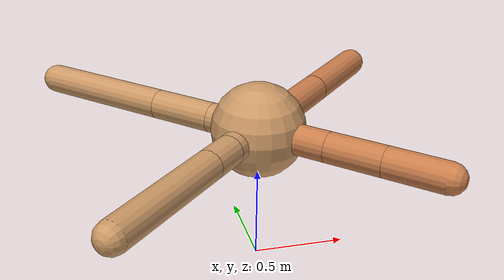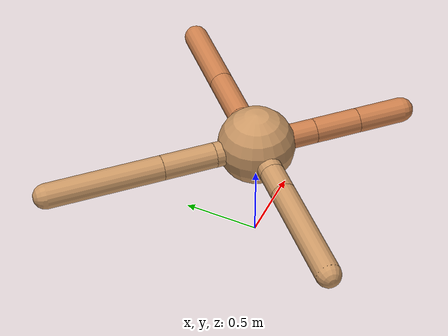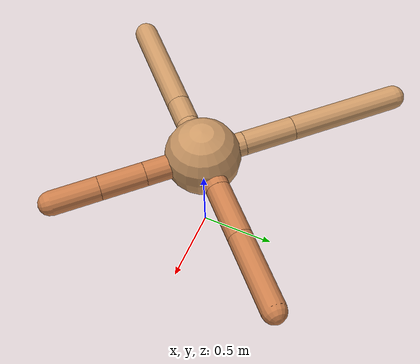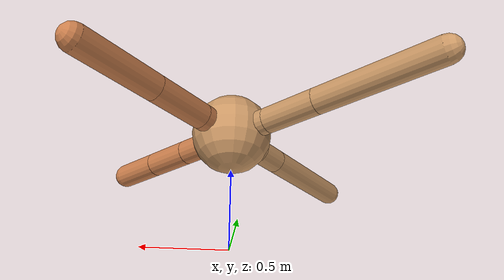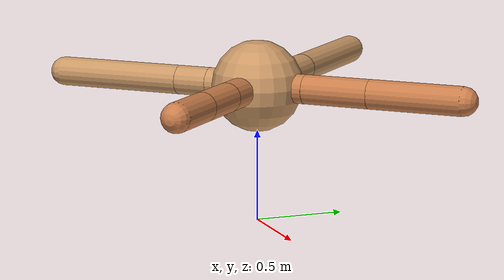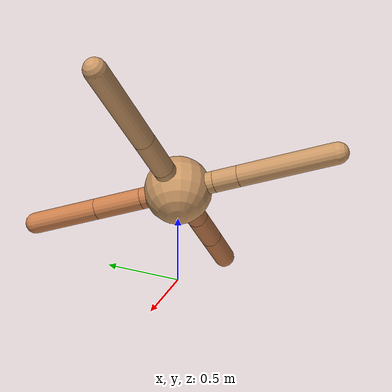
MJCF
<mujoco model="ant">
  <compiler angle="degree" coordinate="local" inertiafromgeom="true" />
  <option integrator="RK4" timestep="0.01" />
  <custom>
    <numeric data="0.0 0.0 0.55 1.0 0.0 0.0 0.0 0.0 1.0 0.0 -1.0 0.0 -1.0 0.0 1.0" name="init_qpos" />
  </custom>
  <default>
    <joint armature="1" damping="1" limited="true" />
    <geom conaffinity="0" condim="3" density="5.0" friction="1.5 0.1 0.1" margin="0.01" rgba="0.8 0.6 0.4 1" />
  </default>
  <worldbody>
    <body name="torso" pos="0 0 0.75">
      <geom name="torso_geom" pos="0 0 0" size="0.25" type="sphere" />

      <body name="front_left_leg" pos="0 0 0">
        <geom fromto="0.0 0.0 0.0 0.2 0.2 0.0" name="aux_1_geom" size="0.08" type="capsule" rgba=".8 .5 .3 1" />
        <body name="aux_1" pos="0.2 0.2 0.0">
          <joint axis="0 0 1" name="hip_1" pos="0.0 0.0 0.0" range="-40 40" type="hinge" />
          <geom fromto="0.0 0.0 0.0 0.26093669214838255 0.26093669214838255 0.0" name="left_leg_geom" size="0.08" type="capsule" rgba=".8 .5 .3 1" />
          <body pos="0.26093669214838255 0.26093669214838255 0.0" name="front_left_foot">
            <joint axis="-1 1 0" name="ankle_1" pos="0.0 0.0 0.0" range="30 100" type="hinge" />
            <geom fromto="0.0 0.0 0.0 0.36862868232095874 0.36862868232095874 0.0" name="left_ankle_geom" size="0.08" type="capsule" rgba=".8 .5 .3 1" />
          </body>
        </body>
      </body>
      <body name="front_right_leg" pos="0 0 0">
        <geom fromto="0.0 0.0 0.0 -0.2 0.2 0.0" name="aux_2_geom" size="0.08" type="capsule" />
        <body name="aux_2" pos="-0.2 0.2 0.0">
          <joint axis="0 0 1" name="hip_2" pos="0.0 0.0 0.0" range="-40 40" type="hinge" />
          <geom fromto="0.0 0.0 0.0 -0.24515699575197117 0.24515699575197117 0.0" name="right_leg_geom" size="0.08" type="capsule" />
          <body pos="-0.24515699575197117 0.24515699575197117 0.0" name="front_right_foot">
            <joint axis="1 1 0" name="ankle_2" pos="0.0 0.0 0.0" range="-100 -30" type="hinge" />
            <geom fromto="0.0 0.0 0.0 -0.5303983821946051 0.5303983821946051 0.0" name="right_ankle_geom" size="0.08" type="capsule" />
          </body>
        </body>
      </body>
      <body name="left_back_leg" pos="0 0 0">
        <geom fromto="0.0 0.0 0.0 -0.20133250001841294 -0.20133250001841294 0.0" name="aux_3_geom" size="0.08" type="capsule" />
        <body name="aux_3" pos="-0.20133250001841294 -0.20133250001841294 0.0">
          <joint axis="0 0 1" name="hip_3" pos="0.0 0.0 0.0" range="-40 40" type="hinge" />
          <geom fromto="0.0 0.0 0.0 -0.130430050880678 -0.130430050880678 0.0" name="back_leg_geom" size="0.08" type="capsule" />
          <body pos="-0.130430050880678 -0.130430050880678 0.0" name="left_back_foot">
            <joint axis="-1 1 0" name="ankle_3" pos="0.0 0.0 0.0" range="-100 -30" type="hinge" />
            <geom fromto="0.0 0.0 0.0 -0.5083386086387001 -0.5083386086387001 0.0" name="third_ankle_geom" size="0.08" type="capsule" />
          </body>
        </body>
      </body>
      <body name="right_back_leg" pos="0 0 0">
        <geom fromto="0.0 0.0 0.0 0.279007227432843 -0.279007227432843 0.0" name="aux_4_geom" size="0.08" type="capsule" rgba=".8 .5 .3 1" />
        <body name="aux_4" pos="0.279007227432843 -0.279007227432843 0.0">
          <joint axis="0 0 1" name="hip_4" pos="0.0 0.0 0.0" range="-40 40" type="hinge" />
          <geom fromto="0.0 0.0 0.0 0.2112972819498976 -0.2112972819498976 0.0" name="rightback_leg_geom" size="0.08" type="capsule" rgba=".8 .5 .3 1" />
          <body pos="0.2112972819498976 -0.2112972819498976 0.0" name="right_back_foot">
            <joint axis="1 1 0" name="ankle_4" pos="0.0 0.0 0.0" range="30 100" type="hinge" />
            <geom fromto="0.0 0.0 0.0 0.2208014607017705 -0.2208014607017705 0.0" name="fourth_ankle_geom" size="0.08" type="capsule" rgba=".8 .5 .3 1" />
          </body>
        </body>
      </body>
    </body>
  </worldbody>
  <actuator>
    <motor ctrllimited="true" ctrlrange="-1.0 1.0" joint="hip_4" gear="150" />
    <motor ctrllimited="true" ctrlrange="-1.0 1.0" joint="ankle_4" gear="150" />
    <motor ctrllimited="true" ctrlrange="-1.0 1.0" joint="hip_1" gear="150" />
    <motor ctrllimited="true" ctrlrange="-1.0 1.0" joint="ankle_1" gear="150" />
    <motor ctrllimited="true" ctrlrange="-1.0 1.0" joint="hip_2" gear="150" />
    <motor ctrllimited="true" ctrlrange="-1.0 1.0" joint="ankle_2" gear="150" />
    <motor ctrllimited="true" ctrlrange="-1.0 1.0" joint="hip_3" gear="150" />
    <motor ctrllimited="true" ctrlrange="-1.0 1.0" joint="ankle_3" gear="150" />
  </actuator>
</mujoco>
